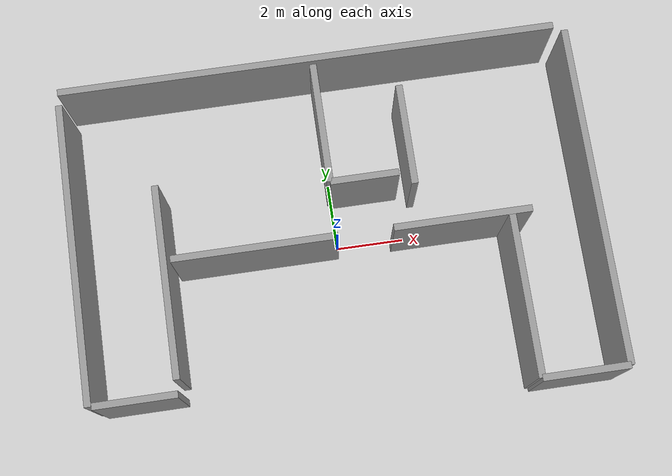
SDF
<?xml version="1.0" ?>
<!-- this file is auto generated using pedsim_gazebo_plugin pkg -->
<sdf version="1.5">
  <world name="default">
    <plugin name="gazebo_ros_state" filename="libgazebo_ros_state.so">
    <plugin name="gazebo_ros_init" filename="libgazebo_ros_init.so"/>
    <plugin name="gazebo_ros_factory" filename="libgazebo_ros_factory.so"/>
      <ros>
        <namespace>/gazebo_spawner</namespace>
      </ros>
      <update_rate>1.0</update_rate>
    </plugin>
    <!-- Ground Plane -->
    <include>
        <uri>model://ground_plane</uri>
    </include>
    <include>
        <uri>model://sun</uri>
    </include>

    <model name='grey_wall_1'>
      <static>1</static>
      <link name='link'>
    	<pose frame=''>-2.4 -0.2  1.4 0 0 -0.0</pose>

    <collision name='collision'>
      <geometry>
        <box>
        	<size> 4.8 .2  2.8 </size>
		</box>
        </geometry>
        <max_contacts>10</max_contacts>
        <surface>
        <contact>
            <ode/>
        </contact>
        <bounce/>
        <friction>
            <torsional>
            <ode/>
            </torsional>
            <ode/>
        </friction>
        </surface>
    </collision>
    <visual name='visual'>
        <cast_shadows>0</cast_shadows>
        <geometry>
          <box>
        	<size> 4.8 .2  2.8 </size>
		</box>
    </geometry>
        <material>
            <script>
            <uri>model://grey_wall/materials/scripts</uri>
            <uri>model://grey_wall/materials/textures</uri>
            <name>vrc/grey_wall</name>
            </script>
        </material>
        </visual>
        <self_collide>0</self_collide>
        <enable_wind>0</enable_wind>
        <kinematic>0</kinematic>
    </link>
    </model>

    <model name='grey_wall_2'>
      <static>1</static>
      <link name='link'>
    	<pose frame=''>-5.0 -0.8  1.4 0 0 1.57</pose>

    <collision name='collision'>
      <geometry>
        <box>
        	<size> 5.6 .2  2.8 </size>
		</box>
        </geometry>
        <max_contacts>10</max_contacts>
        <surface>
        <contact>
            <ode/>
        </contact>
        <bounce/>
        <friction>
            <torsional>
            <ode/>
            </torsional>
            <ode/>
        </friction>
        </surface>
    </collision>
    <visual name='visual'>
        <cast_shadows>0</cast_shadows>
        <geometry>
          <box>
        	<size> 5.6 .2  2.8 </size>
		</box>
    </geometry>
        <material>
            <script>
            <uri>model://grey_wall/materials/scripts</uri>
            <uri>model://grey_wall/materials/textures</uri>
            <name>vrc/grey_wall</name>
            </script>
        </material>
        </visual>
        <self_collide>0</self_collide>
        <enable_wind>0</enable_wind>
        <kinematic>0</kinematic>
    </link>
    </model>

    <model name='grey_wall_3'>
      <static>1</static>
      <link name='link'>
    	<pose frame=''>-6.2 -4.0  1.4 0 0 -0.0</pose>

    <collision name='collision'>
      <geometry>
        <box>
        	<size> 2.4000000000000004 .2  2.8 </size>
		</box>
        </geometry>
        <max_contacts>10</max_contacts>
        <surface>
        <contact>
            <ode/>
        </contact>
        <bounce/>
        <friction>
            <torsional>
            <ode/>
            </torsional>
            <ode/>
        </friction>
        </surface>
    </collision>
    <visual name='visual'>
        <cast_shadows>0</cast_shadows>
        <geometry>
          <box>
        	<size> 2.4000000000000004 .2  2.8 </size>
		</box>
    </geometry>
        <material>
            <script>
            <uri>model://grey_wall/materials/scripts</uri>
            <uri>model://grey_wall/materials/textures</uri>
            <name>vrc/grey_wall</name>
            </script>
        </material>
        </visual>
        <self_collide>0</self_collide>
        <enable_wind>0</enable_wind>
        <kinematic>0</kinematic>
    </link>
    </model>

    <model name='grey_wall_4'>
      <static>1</static>
      <link name='link'>
    	<pose frame=''>-7.5 0.3999999999999999  1.4 0 0 1.57</pose>

    <collision name='collision'>
      <geometry>
        <box>
        	<size> 8.8 .2  2.8 </size>
		</box>
        </geometry>
        <max_contacts>10</max_contacts>
        <surface>
        <contact>
            <ode/>
        </contact>
        <bounce/>
        <friction>
            <torsional>
            <ode/>
            </torsional>
            <ode/>
        </friction>
        </surface>
    </collision>
    <visual name='visual'>
        <cast_shadows>0</cast_shadows>
        <geometry>
          <box>
        	<size> 8.8 .2  2.8 </size>
		</box>
    </geometry>
        <material>
            <script>
            <uri>model://grey_wall/materials/scripts</uri>
            <uri>model://grey_wall/materials/textures</uri>
            <name>vrc/grey_wall</name>
            </script>
        </material>
        </visual>
        <self_collide>0</self_collide>
        <enable_wind>0</enable_wind>
        <kinematic>0</kinematic>
    </link>
    </model>

    <model name='grey_wall_5'>
      <static>1</static>
      <link name='link'>
    	<pose frame=''>-0.1499999999999999 5.2  1.4 0 0 0.0</pose>

    <collision name='collision'>
      <geometry>
        <box>
        	<size> 14.7 .2  2.8 </size>
		</box>
        </geometry>
        <max_contacts>10</max_contacts>
        <surface>
        <contact>
            <ode/>
        </contact>
        <bounce/>
        <friction>
            <torsional>
            <ode/>
            </torsional>
            <ode/>
        </friction>
        </surface>
    </collision>
    <visual name='visual'>
        <cast_shadows>0</cast_shadows>
        <geometry>
          <box>
        	<size> 14.7 .2  2.8 </size>
		</box>
    </geometry>
        <material>
            <script>
            <uri>model://grey_wall/materials/scripts</uri>
            <uri>model://grey_wall/materials/textures</uri>
            <name>vrc/grey_wall</name>
            </script>
        </material>
        </visual>
        <self_collide>0</self_collide>
        <enable_wind>0</enable_wind>
        <kinematic>0</kinematic>
    </link>
    </model>

    <model name='grey_wall_6'>
      <static>1</static>
      <link name='link'>
    	<pose frame=''>-0.1499999999999999 5.2  1.4 0 0 0.0</pose>

    <collision name='collision'>
      <geometry>
        <box>
        	<size> 14.7 .2  2.8 </size>
		</box>
        </geometry>
        <max_contacts>10</max_contacts>
        <surface>
        <contact>
            <ode/>
        </contact>
        <bounce/>
        <friction>
            <torsional>
            <ode/>
            </torsional>
            <ode/>
        </friction>
        </surface>
    </collision>
    <visual name='visual'>
        <cast_shadows>0</cast_shadows>
        <geometry>
          <box>
        	<size> 14.7 .2  2.8 </size>
		</box>
    </geometry>
        <material>
            <script>
            <uri>model://grey_wall/materials/scripts</uri>
            <uri>model://grey_wall/materials/textures</uri>
            <name>vrc/grey_wall</name>
            </script>
        </material>
        </visual>
        <self_collide>0</self_collide>
        <enable_wind>0</enable_wind>
        <kinematic>0</kinematic>
    </link>
    </model>

    <model name='grey_wall_7'>
      <static>1</static>
      <link name='link'>
    	<pose frame=''>7.5 0.0  1.4 0 0 1.57</pose>

    <collision name='collision'>
      <geometry>
        <box>
        	<size> 10.0 .2  2.8 </size>
		</box>
        </geometry>
        <max_contacts>10</max_contacts>
        <surface>
        <contact>
            <ode/>
        </contact>
        <bounce/>
        <friction>
            <torsional>
            <ode/>
            </torsional>
            <ode/>
        </friction>
        </surface>
    </collision>
    <visual name='visual'>
        <cast_shadows>0</cast_shadows>
        <geometry>
          <box>
        	<size> 10.0 .2  2.8 </size>
		</box>
    </geometry>
        <material>
            <script>
            <uri>model://grey_wall/materials/scripts</uri>
            <uri>model://grey_wall/materials/textures</uri>
            <name>vrc/grey_wall</name>
            </script>
        </material>
        </visual>
        <self_collide>0</self_collide>
        <enable_wind>0</enable_wind>
        <kinematic>0</kinematic>
    </link>
    </model>

    <model name='grey_wall_8'>
      <static>1</static>
      <link name='link'>
    	<pose frame=''>6.25 -5.0  1.4 0 0 -0.0</pose>

    <collision name='collision'>
      <geometry>
        <box>
        	<size> 2.5 .2  2.8 </size>
		</box>
        </geometry>
        <max_contacts>10</max_contacts>
        <surface>
        <contact>
            <ode/>
        </contact>
        <bounce/>
        <friction>
            <torsional>
            <ode/>
            </torsional>
            <ode/>
        </friction>
        </surface>
    </collision>
    <visual name='visual'>
        <cast_shadows>0</cast_shadows>
        <geometry>
          <box>
        	<size> 2.5 .2  2.8 </size>
		</box>
    </geometry>
        <material>
            <script>
            <uri>model://grey_wall/materials/scripts</uri>
            <uri>model://grey_wall/materials/textures</uri>
            <name>vrc/grey_wall</name>
            </script>
        </material>
        </visual>
        <self_collide>0</self_collide>
        <enable_wind>0</enable_wind>
        <kinematic>0</kinematic>
    </link>
    </model>

    <model name='grey_wall_9'>
      <static>1</static>
      <link name='link'>
    	<pose frame=''>5.0 -2.6  1.4 0 0 1.57</pose>

    <collision name='collision'>
      <geometry>
        <box>
        	<size> 4.8 .2  2.8 </size>
		</box>
        </geometry>
        <max_contacts>10</max_contacts>
        <surface>
        <contact>
            <ode/>
        </contact>
        <bounce/>
        <friction>
            <torsional>
            <ode/>
            </torsional>
            <ode/>
        </friction>
        </surface>
    </collision>
    <visual name='visual'>
        <cast_shadows>0</cast_shadows>
        <geometry>
          <box>
        	<size> 4.8 .2  2.8 </size>
		</box>
    </geometry>
        <material>
            <script>
            <uri>model://grey_wall/materials/scripts</uri>
            <uri>model://grey_wall/materials/textures</uri>
            <name>vrc/grey_wall</name>
            </script>
        </material>
        </visual>
        <self_collide>0</self_collide>
        <enable_wind>0</enable_wind>
        <kinematic>0</kinematic>
    </link>
    </model>

    <model name='grey_wall_10'>
      <static>1</static>
      <link name='link'>
    	<pose frame=''>3.5999999999999996 -0.2  1.4 0 0 -0.0</pose>

    <collision name='collision'>
      <geometry>
        <box>
        	<size> 3.9999999999999996 .2  2.8 </size>
		</box>
        </geometry>
        <max_contacts>10</max_contacts>
        <surface>
        <contact>
            <ode/>
        </contact>
        <bounce/>
        <friction>
            <torsional>
            <ode/>
            </torsional>
            <ode/>
        </friction>
        </surface>
    </collision>
    <visual name='visual'>
        <cast_shadows>0</cast_shadows>
        <geometry>
          <box>
        	<size> 3.9999999999999996 .2  2.8 </size>
		</box>
    </geometry>
        <material>
            <script>
            <uri>model://grey_wall/materials/scripts</uri>
            <uri>model://grey_wall/materials/textures</uri>
            <name>vrc/grey_wall</name>
            </script>
        </material>
        </visual>
        <self_collide>0</self_collide>
        <enable_wind>0</enable_wind>
        <kinematic>0</kinematic>
    </link>
    </model>

    <model name='grey_wall_11'>
      <static>1</static>
      <link name='link'>
    	<pose frame=''>2.4 2.5  1.4 0 0 1.57</pose>

    <collision name='collision'>
      <geometry>
        <box>
        	<size> 3.0 .2  2.8 </size>
		</box>
        </geometry>
        <max_contacts>10</max_contacts>
        <surface>
        <contact>
            <ode/>
        </contact>
        <bounce/>
        <friction>
            <torsional>
            <ode/>
            </torsional>
            <ode/>
        </friction>
        </surface>
    </collision>
    <visual name='visual'>
        <cast_shadows>0</cast_shadows>
        <geometry>
          <box>
        	<size> 3.0 .2  2.8 </size>
		</box>
    </geometry>
        <material>
            <script>
            <uri>model://grey_wall/materials/scripts</uri>
            <uri>model://grey_wall/materials/textures</uri>
            <name>vrc/grey_wall</name>
            </script>
        </material>
        </visual>
        <self_collide>0</self_collide>
        <enable_wind>0</enable_wind>
        <kinematic>0</kinematic>
    </link>
    </model>

    <model name='grey_wall_12'>
      <static>1</static>
      <link name='link'>
    	<pose frame=''>0.0 3.2  1.4 0 0 1.57</pose>

    <collision name='collision'>
      <geometry>
        <box>
        	<size> 3.6 .2  2.8 </size>
		</box>
        </geometry>
        <max_contacts>10</max_contacts>
        <surface>
        <contact>
            <ode/>
        </contact>
        <bounce/>
        <friction>
            <torsional>
            <ode/>
            </torsional>
            <ode/>
        </friction>
        </surface>
    </collision>
    <visual name='visual'>
        <cast_shadows>0</cast_shadows>
        <geometry>
          <box>
        	<size> 3.6 .2  2.8 </size>
		</box>
    </geometry>
        <material>
            <script>
            <uri>model://grey_wall/materials/scripts</uri>
            <uri>model://grey_wall/materials/textures</uri>
            <name>vrc/grey_wall</name>
            </script>
        </material>
        </visual>
        <self_collide>0</self_collide>
        <enable_wind>0</enable_wind>
        <kinematic>0</kinematic>
    </link>
    </model>

    <model name='grey_wall_13'>
      <static>1</static>
      <link name='link'>
    	<pose frame=''>1.0 1.4  1.4 0 0 -0.0</pose>

    <collision name='collision'>
      <geometry>
        <box>
        	<size> 2.0 .2  2.8 </size>
		</box>
        </geometry>
        <max_contacts>10</max_contacts>
        <surface>
        <contact>
            <ode/>
        </contact>
        <bounce/>
        <friction>
            <torsional>
            <ode/>
            </torsional>
            <ode/>
        </friction>
        </surface>
    </collision>
    <visual name='visual'>
        <cast_shadows>0</cast_shadows>
        <geometry>
          <box>
        	<size> 2.0 .2  2.8 </size>
		</box>
    </geometry>
        <material>
            <script>
            <uri>model://grey_wall/materials/scripts</uri>
            <uri>model://grey_wall/materials/textures</uri>
            <name>vrc/grey_wall</name>
            </script>
        </material>
        </visual>
        <self_collide>0</self_collide>
        <enable_wind>0</enable_wind>
        <kinematic>0</kinematic>
    </link>
    </model>

  </world>
</sdf>
